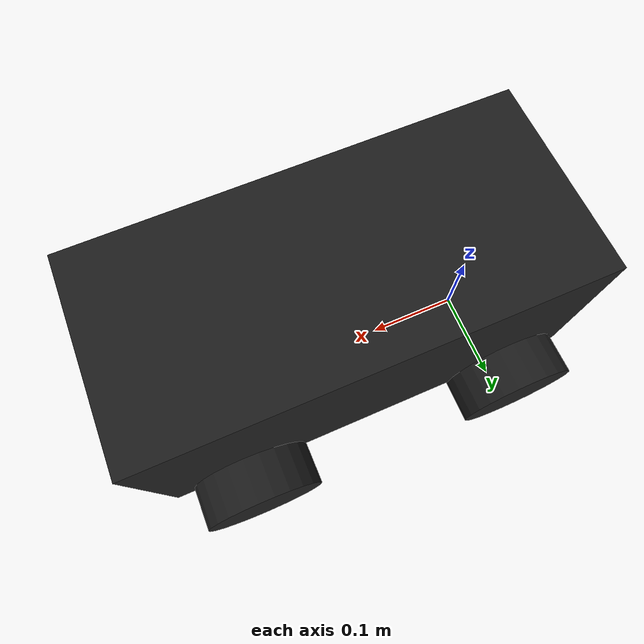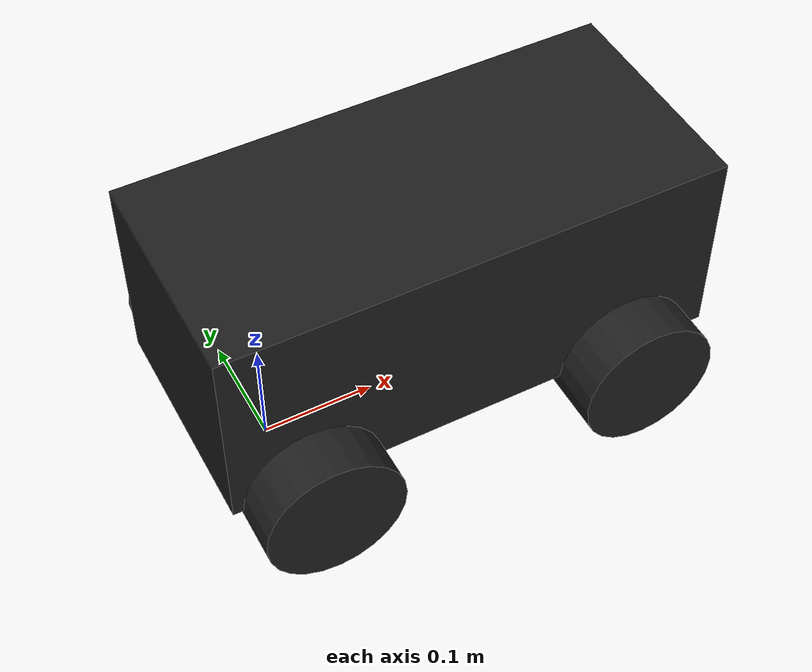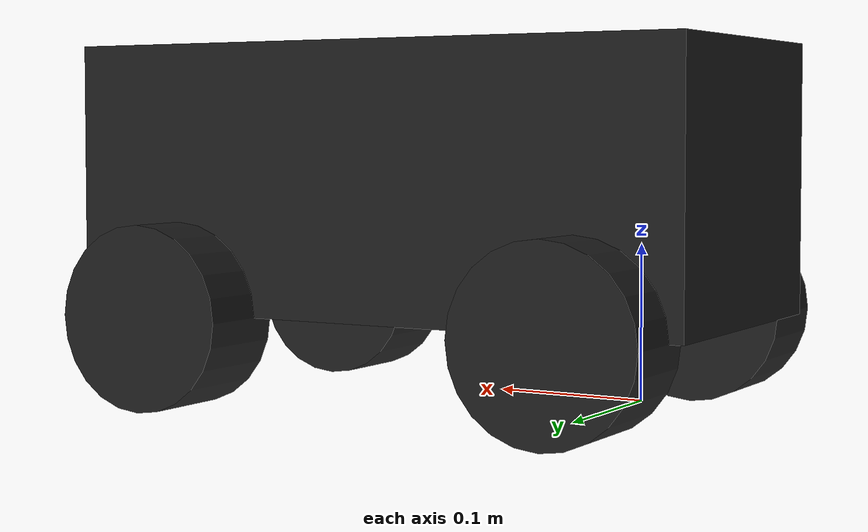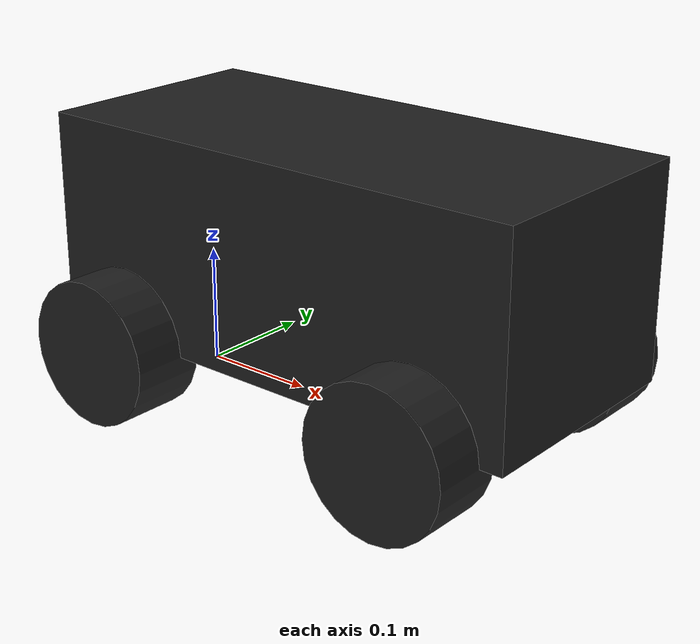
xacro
<?xml version="1.0" ?>
<robot xmlns:xacro="http://www.ros.org/wiki/xacro">

  <!-- BASE_FOOTPRINT LINK -->
  <link name="base_footprint"/>

  <!-- BASE LINK -->
  <joint name="base_joint" type="fixed">
    <parent link="base_footprint"/>
    <child link="base_link" />
    <origin xyz="0 0 0.050" rpy="0 0 0"/>
  </joint>

  <link name="base_link">                                                           <!--Base Frame in 0 0 0-->
    <visual>
      <origin xyz="0.15 0 0.0895" rpy="0 0 0"/>                                     <!-- Change the Position of the Box relative to the base_link -->
      <geometry>
        <box size="0.44 0.202 0.179"/>                                              <!-- Box Size -->
      </geometry>
      <material name="light_black"/>
    </visual>
    <collision>
      <origin xyz="0.15 0 0.0895" rpy="0 0 0"/>
      <geometry>
        <box size="0.44 0.202 0.179"/>
      </geometry>
    </collision>
    <xacro:inertial_box mass="1.3729096e+00" x="0.44" y="0.202" z="0.179">          <!-- XYZ Box Size & Mass of Turtlebot3 chassis (https://github.com/ROBOTIS-GIT/turtlebot3/blob/master/turtlebot3_description/urdf/turtlebot3_waffle.urdf.xacro) -->
      <origin xyz="0.15 0 0.0895" rpy="0 0 0"/>                                     <!-- Origin Shifted Box Size -->
    </xacro:inertial_box>
  </link>

  <!-- WHEEL LEFT BACK LINK -->
  <joint name="wheel_left_back_joint" type="continuous">
    <parent link="base_link"/>
    <child link="wheel_left_back_link"/>
    <origin xyz="0 0.114 0" rpy="-${pi/2} 0 0"/>                                    <!-- Shift Wheel Frame/Link -->
    <axis xyz ="0 0 1"/>
  </joint>

  <link name="wheel_left_back_link">
    <visual>
      <origin rpy="0 0 0" xyz="0 0 0"/>
      <geometry>
        <cylinder radius="0.061" length="0.062"/>                                   <!-- Wheel Size -->
      </geometry>
      <material name="light_black"/>
    </visual>
    <collision>
      <origin rpy="0 0 0" xyz="0 0 0"/>
      <geometry>
        <cylinder radius="0.061" length="0.062"/>
      </geometry>
    </collision>
    <xacro:inertial_cylinder mass="0.477" length="0.062" radius="0.061">            <!-- Mass of Jackal wheels: https://github.com/jackal/jackal/blob/noetic-devel/jackal_description/urdf/jackal.urdf.xacro -->
      <origin xyz="0 0 0" rpy="0 0 0"/>
    </xacro:inertial_cylinder>
  </link>

  <!-- WHEEL RIGHT BACK LINK -->
  <joint name="wheel_right_back_joint" type="continuous">
    <parent link="base_link"/>
    <child link="wheel_right_back_link"/>
    <origin xyz="0 -0.114 0" rpy="-${pi/2} 0 0"/>                                   <!-- Shift Wheel Frame/Link -->
    <axis xyz ="0 0 1"/>
  </joint>

  <link name="wheel_right_back_link">
    <visual>
      <origin rpy="0 0 0" xyz="0 0 0"/>
      <geometry>
        <cylinder radius="0.061" length="0.062"/>                                   <!-- Wheel Size -->
      </geometry>
      <material name="light_black"/>
    </visual>
    <collision>
      <origin rpy="0 0 0" xyz="0 0 0"/>
      <geometry>
        <cylinder radius="0.061" length="0.062"/>
      </geometry>
    </collision>
    <xacro:inertial_cylinder mass="0.477" length="0.062" radius="0.061">            <!-- Mass of Jackal wheels: https://github.com/jackal/jackal/blob/noetic-devel/jackal_description/urdf/jackal.urdf.xacro -->
        <origin xyz="0 0 0" rpy="0 0 0"/>
    </xacro:inertial_cylinder>
  </link>

  <!--  WHEEL LEFT FRONT LINK -->
  <joint name="wheel_left_front_joint" type="fixed">
    <parent link="base_link"/>
    <child link="wheel_left_front_link"/>
    <origin xyz="0.29 0.114 0" rpy="-${pi/2} 0 0"/>                                 <!-- Shift Wheel Frame/Link -->
  </joint>

  <link name="wheel_left_front_link">
    <visual>
      <origin rpy="0 0 0" xyz="0 0 0"/>
      <geometry>
        <cylinder radius="0.061" length="0.062"/>                                   <!-- Wheel Size -->
      </geometry>
      <material name="light_black"/>
    </visual>
    <collision>
      <origin rpy="0 0 0" xyz="0 0 0"/>
      <geometry>
        <cylinder radius="0.061" length="0.062"/>
      </geometry>
    </collision>
    <xacro:inertial_cylinder mass="0.477" length="0.062" radius="0.061">            <!-- Mass of Jackal wheels: https://github.com/jackal/jackal/blob/noetic-devel/jackal_description/urdf/jackal.urdf.xacro -->
        <origin xyz="0 0 0" rpy="0 0 0"/>
    </xacro:inertial_cylinder>
  </link>

  <!--  WHEEL RIGHT FRONT LINK -->
  <joint name="wheel_right_front_joint" type="fixed">
    <parent link="base_link"/>
    <child link="wheel_right_front_link"/>
    <origin xyz="0.29 -0.114 0" rpy="-${pi/2} 0 0"/>                                <!-- Shift Wheel Frame/Link -->
  </joint>

  <link name="wheel_right_front_link">
    <visual>
      <origin rpy="0 0 0" xyz="0 0 0"/>
      <geometry>
        <cylinder radius="0.061" length="0.062"/>                                   <!-- Wheel Size -->
      </geometry>
      <material name="light_black"/>
    </visual>
    <collision>
      <origin rpy="0 0 0" xyz="0 0 0"/>
      <geometry>
        <cylinder radius="0.061" length="0.062"/>
      </geometry>
    </collision>
    <xacro:inertial_cylinder mass="0.477" length="0.062" radius="0.061">             <!-- Mass of Jackal wheels: https://github.com/jackal/jackal/blob/noetic-devel/jackal_description/urdf/jackal.urdf.xacro -->
        <origin xyz="0 0 0" rpy="0 0 0"/>
    </xacro:inertial_cylinder>
  </link>

  <!-- Specify Gazebo Color for Simulation (Only Evaluated in Sim Mode) -->

</robot>
